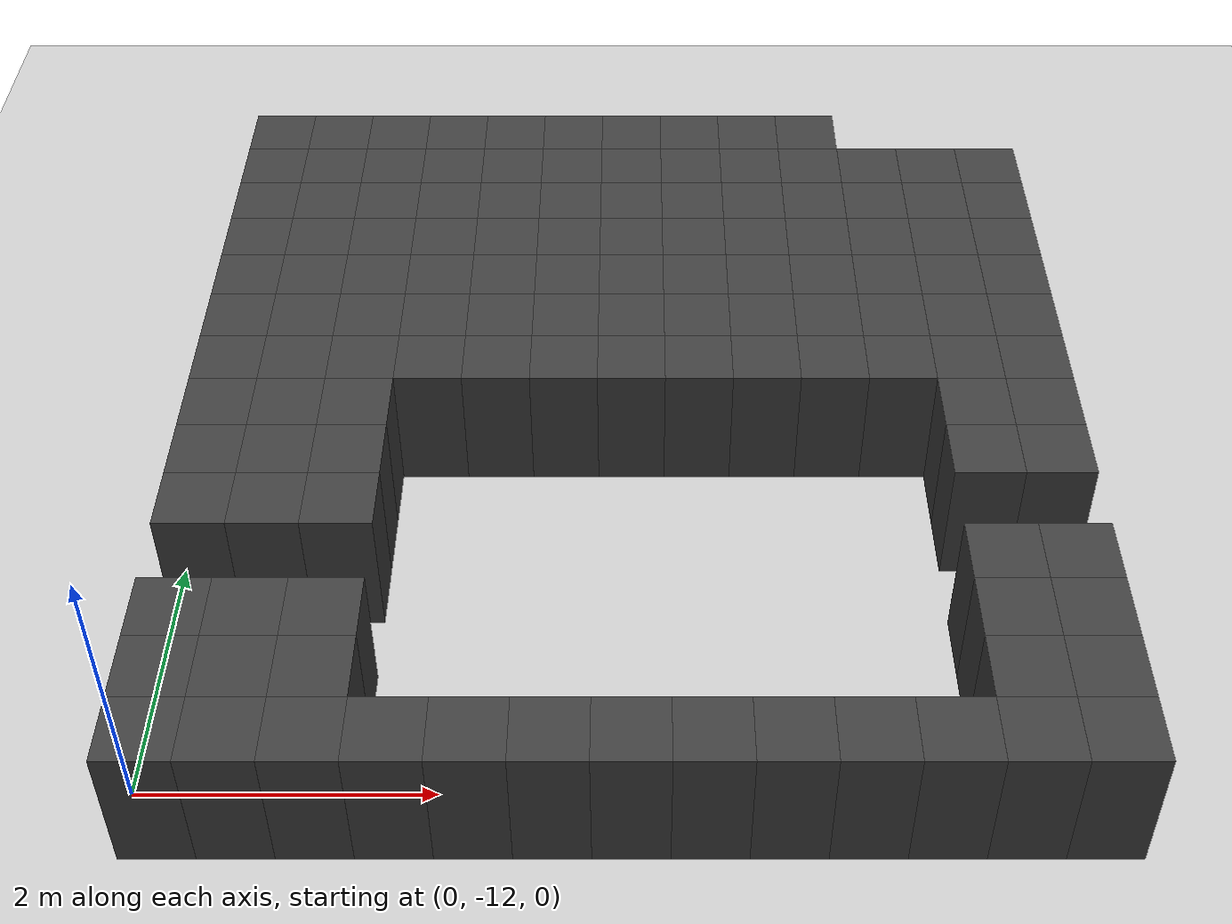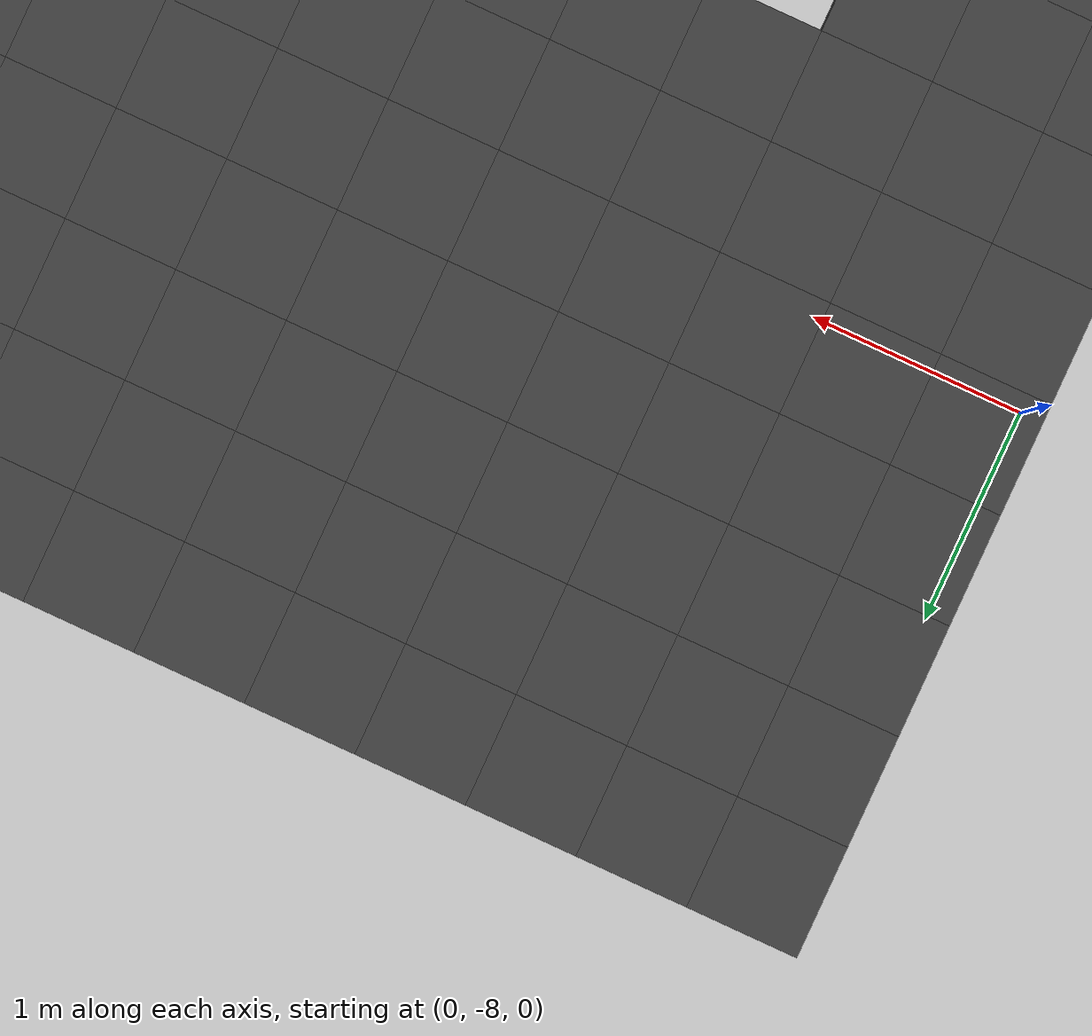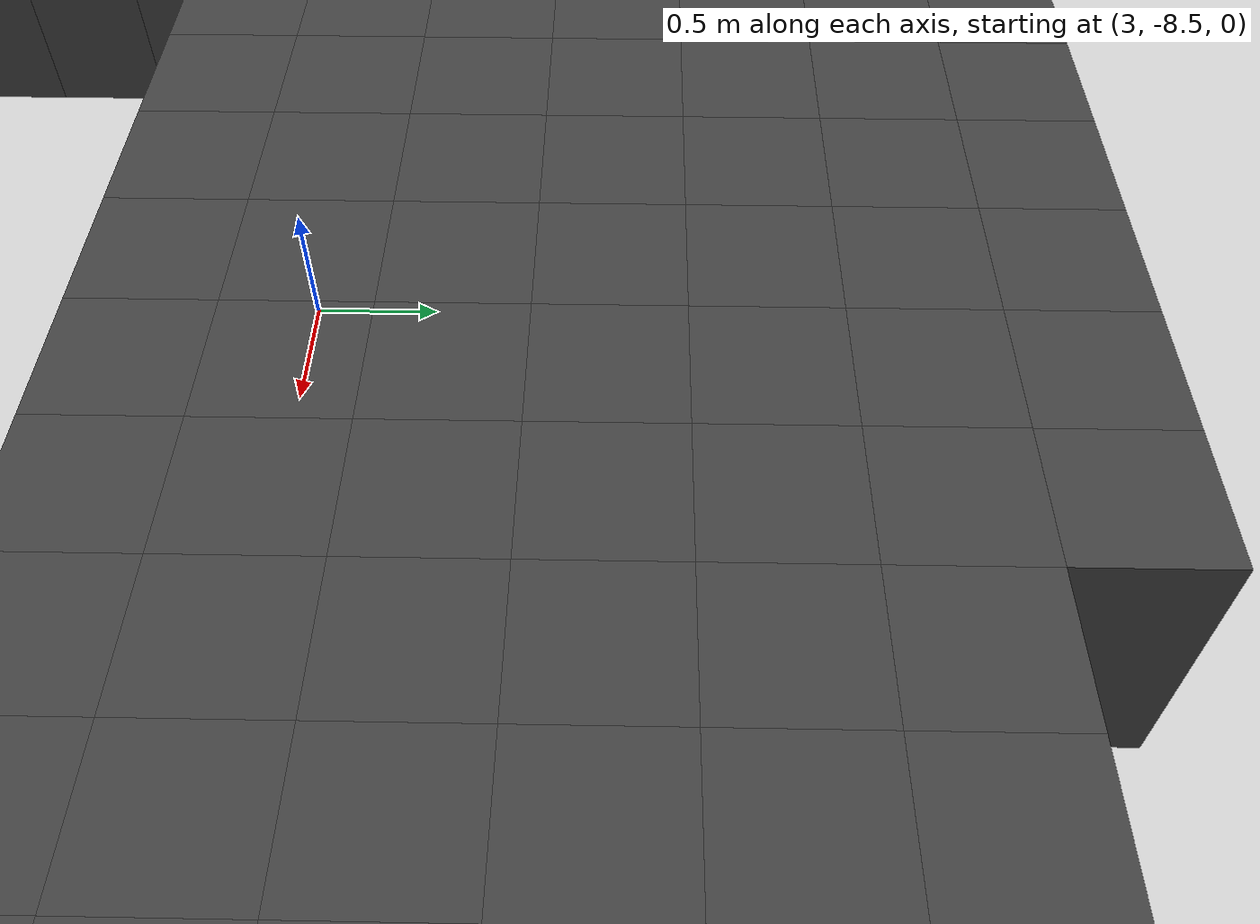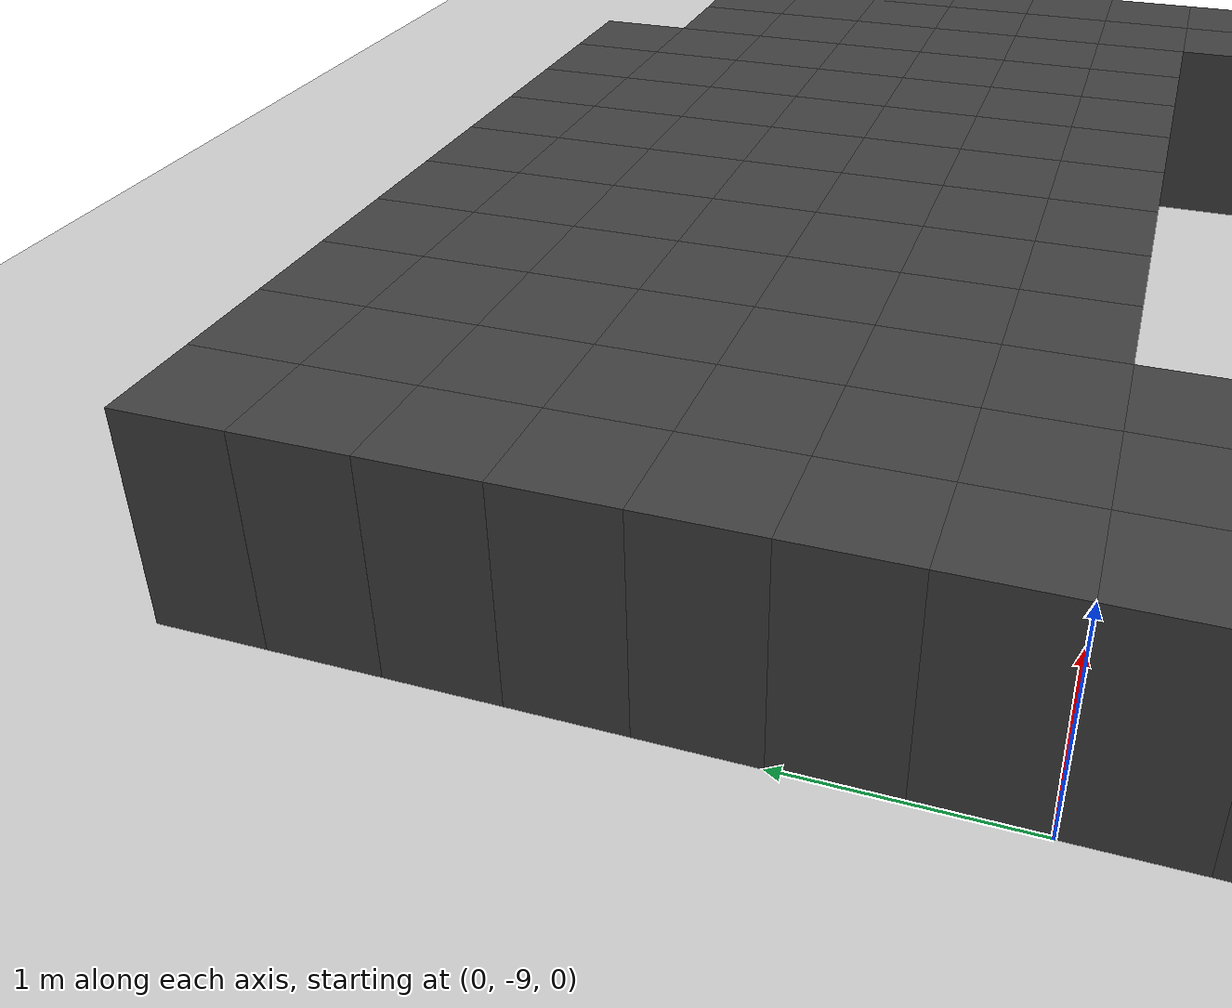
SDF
<sdf version="1.7">
 <world name="map_11779">
  <model name="ground_plane">
   <static>true</static>
   <link name="link">
    <collision name="collision">
     <geometry><plane><normal>0 0 1</normal><size>200 200</size></plane></geometry>
    </collision>
    <visual name="visual">
     <geometry><plane><normal>0 0 1</normal><size>200 200</size></plane></geometry>
     <material><ambient>0.8 0.8 0.8 1</ambient><diffuse>0.8 0.8 0.8 1</diffuse></material>
    </visual>
   </link>
  </model>
  <model name="maze_environment">
   <static>true</static>
   <link name="wall_1510">
    <pose>0.250 -5.750 0.500 0 0 0</pose>
    <collision name="col"><geometry><box><size>0.5 0.5 1.0</size></box></geometry></collision>
    <visual name="vis">
     <geometry><box><size>0.5 0.5 1.0</size></box></geometry>
     <material><ambient>0.15 0.15 0.15 1</ambient><diffuse>0.25 0.25 0.25 1</diffuse></material>
    </visual>
   </link>
   <link name="wall_1511">
    <pose>0.750 -5.750 0.500 0 0 0</pose>
    <collision name="col"><geometry><box><size>0.5 0.5 1.0</size></box></geometry></collision>
    <visual name="vis">
     <geometry><box><size>0.5 0.5 1.0</size></box></geometry>
     <material><ambient>0.15 0.15 0.15 1</ambient><diffuse>0.25 0.25 0.25 1</diffuse></material>
    </visual>
   </link>
   <link name="wall_1512">
    <pose>1.250 -5.750 0.500 0 0 0</pose>
    <collision name="col"><geometry><box><size>0.5 0.5 1.0</size></box></geometry></collision>
    <visual name="vis">
     <geometry><box><size>0.5 0.5 1.0</size></box></geometry>
     <material><ambient>0.15 0.15 0.15 1</ambient><diffuse>0.25 0.25 0.25 1</diffuse></material>
    </visual>
   </link>
   <link name="wall_1513">
    <pose>1.750 -5.750 0.500 0 0 0</pose>
    <collision name="col"><geometry><box><size>0.5 0.5 1.0</size></box></geometry></collision>
    <visual name="vis">
     <geometry><box><size>0.5 0.5 1.0</size></box></geometry>
     <material><ambient>0.15 0.15 0.15 1</ambient><diffuse>0.25 0.25 0.25 1</diffuse></material>
    </visual>
   </link>
   <link name="wall_1514">
    <pose>2.250 -5.750 0.500 0 0 0</pose>
    <collision name="col"><geometry><box><size>0.5 0.5 1.0</size></box></geometry></collision>
    <visual name="vis">
     <geometry><box><size>0.5 0.5 1.0</size></box></geometry>
     <material><ambient>0.15 0.15 0.15 1</ambient><diffuse>0.25 0.25 0.25 1</diffuse></material>
    </visual>
   </link>
   <link name="wall_1515">
    <pose>2.750 -5.750 0.500 0 0 0</pose>
    <collision name="col"><geometry><box><size>0.5 0.5 1.0</size></box></geometry></collision>
    <visual name="vis">
     <geometry><box><size>0.5 0.5 1.0</size></box></geometry>
     <material><ambient>0.15 0.15 0.15 1</ambient><diffuse>0.25 0.25 0.25 1</diffuse></material>
    </visual>
   </link>
   <link name="wall_1516">
    <pose>3.250 -5.750 0.500 0 0 0</pose>
    <collision name="col"><geometry><box><size>0.5 0.5 1.0</size></box></geometry></collision>
    <visual name="vis">
     <geometry><box><size>0.5 0.5 1.0</size></box></geometry>
     <material><ambient>0.15 0.15 0.15 1</ambient><diffuse>0.25 0.25 0.25 1</diffuse></material>
    </visual>
   </link>
   <link name="wall_1517">
    <pose>3.750 -5.750 0.500 0 0 0</pose>
    <collision name="col"><geometry><box><size>0.5 0.5 1.0</size></box></geometry></collision>
    <visual name="vis">
     <geometry><box><size>0.5 0.5 1.0</size></box></geometry>
     <material><ambient>0.15 0.15 0.15 1</ambient><diffuse>0.25 0.25 0.25 1</diffuse></material>
    </visual>
   </link>
   <link name="wall_1518">
    <pose>4.250 -5.750 0.500 0 0 0</pose>
    <collision name="col"><geometry><box><size>0.5 0.5 1.0</size></box></geometry></collision>
    <visual name="vis">
     <geometry><box><size>0.5 0.5 1.0</size></box></geometry>
     <material><ambient>0.15 0.15 0.15 1</ambient><diffuse>0.25 0.25 0.25 1</diffuse></material>
    </visual>
   </link>
   <link name="wall_1519">
    <pose>4.750 -5.750 0.500 0 0 0</pose>
    <collision name="col"><geometry><box><size>0.5 0.5 1.0</size></box></geometry></collision>
    <visual name="vis">
     <geometry><box><size>0.5 0.5 1.0</size></box></geometry>
     <material><ambient>0.15 0.15 0.15 1</ambient><diffuse>0.25 0.25 0.25 1</diffuse></material>
    </visual>
   </link>
   <link name="wall_1559">
    <pose>0.250 -6.250 0.500 0 0 0</pose>
    <collision name="col"><geometry><box><size>0.5 0.5 1.0</size></box></geometry></collision>
    <visual name="vis">
     <geometry><box><size>0.5 0.5 1.0</size></box></geometry>
     <material><ambient>0.15 0.15 0.15 1</ambient><diffuse>0.25 0.25 0.25 1</diffuse></material>
    </visual>
   </link>
   <link name="wall_1560">
    <pose>0.750 -6.250 0.500 0 0 0</pose>
    <collision name="col"><geometry><box><size>0.5 0.5 1.0</size></box></geometry></collision>
    <visual name="vis">
     <geometry><box><size>0.5 0.5 1.0</size></box></geometry>
     <material><ambient>0.15 0.15 0.15 1</ambient><diffuse>0.25 0.25 0.25 1</diffuse></material>
    </visual>
   </link>
   <link name="wall_1561">
    <pose>1.250 -6.250 0.500 0 0 0</pose>
    <collision name="col"><geometry><box><size>0.5 0.5 1.0</size></box></geometry></collision>
    <visual name="vis">
     <geometry><box><size>0.5 0.5 1.0</size></box></geometry>
     <material><ambient>0.15 0.15 0.15 1</ambient><diffuse>0.25 0.25 0.25 1</diffuse></material>
    </visual>
   </link>
   <link name="wall_1562">
    <pose>1.750 -6.250 0.500 0 0 0</pose>
    <collision name="col"><geometry><box><size>0.5 0.5 1.0</size></box></geometry></collision>
    <visual name="vis">
     <geometry><box><size>0.5 0.5 1.0</size></box></geometry>
     <material><ambient>0.15 0.15 0.15 1</ambient><diffuse>0.25 0.25 0.25 1</diffuse></material>
    </visual>
   </link>
   <link name="wall_1563">
    <pose>2.250 -6.250 0.500 0 0 0</pose>
    <collision name="col"><geometry><box><size>0.5 0.5 1.0</size></box></geometry></collision>
    <visual name="vis">
     <geometry><box><size>0.5 0.5 1.0</size></box></geometry>
     <material><ambient>0.15 0.15 0.15 1</ambient><diffuse>0.25 0.25 0.25 1</diffuse></material>
    </visual>
   </link>
   <link name="wall_1564">
    <pose>2.750 -6.250 0.500 0 0 0</pose>
    <collision name="col"><geometry><box><size>0.5 0.5 1.0</size></box></geometry></collision>
    <visual name="vis">
     <geometry><box><size>0.5 0.5 1.0</size></box></geometry>
     <material><ambient>0.15 0.15 0.15 1</ambient><diffuse>0.25 0.25 0.25 1</diffuse></material>
    </visual>
   </link>
   <link name="wall_1565">
    <pose>3.250 -6.250 0.500 0 0 0</pose>
    <collision name="col"><geometry><box><size>0.5 0.5 1.0</size></box></geometry></collision>
    <visual name="vis">
     <geometry><box><size>0.5 0.5 1.0</size></box></geometry>
     <material><ambient>0.15 0.15 0.15 1</ambient><diffuse>0.25 0.25 0.25 1</diffuse></material>
    </visual>
   </link>
   <link name="wall_1566">
    <pose>3.750 -6.250 0.500 0 0 0</pose>
    <collision name="col"><geometry><box><size>0.5 0.5 1.0</size></box></geometry></collision>
    <visual name="vis">
     <geometry><box><size>0.5 0.5 1.0</size></box></geometry>
     <material><ambient>0.15 0.15 0.15 1</ambient><diffuse>0.25 0.25 0.25 1</diffuse></material>
    </visual>
   </link>
   <link name="wall_1567">
    <pose>4.250 -6.250 0.500 0 0 0</pose>
    <collision name="col"><geometry><box><size>0.5 0.5 1.0</size></box></geometry></collision>
    <visual name="vis">
     <geometry><box><size>0.5 0.5 1.0</size></box></geometry>
     <material><ambient>0.15 0.15 0.15 1</ambient><diffuse>0.25 0.25 0.25 1</diffuse></material>
    </visual>
   </link>
   <link name="wall_1568">
    <pose>4.750 -6.250 0.500 0 0 0</pose>
    <collision name="col"><geometry><box><size>0.5 0.5 1.0</size></box></geometry></collision>
    <visual name="vis">
     <geometry><box><size>0.5 0.5 1.0</size></box></geometry>
     <material><ambient>0.15 0.15 0.15 1</ambient><diffuse>0.25 0.25 0.25 1</diffuse></material>
    </visual>
   </link>
   <link name="wall_1569">
    <pose>5.250 -6.250 0.500 0 0 0</pose>
    <collision name="col"><geometry><box><size>0.5 0.5 1.0</size></box></geometry></collision>
    <visual name="vis">
     <geometry><box><size>0.5 0.5 1.0</size></box></geometry>
     <material><ambient>0.15 0.15 0.15 1</ambient><diffuse>0.25 0.25 0.25 1</diffuse></material>
    </visual>
   </link>
   <link name="wall_1570">
    <pose>5.750 -6.250 0.500 0 0 0</pose>
    <collision name="col"><geometry><box><size>0.5 0.5 1.0</size></box></geometry></collision>
    <visual name="vis">
     <geometry><box><size>0.5 0.5 1.0</size></box></geometry>
     <material><ambient>0.15 0.15 0.15 1</ambient><diffuse>0.25 0.25 0.25 1</diffuse></material>
    </visual>
   </link>
   <link name="wall_1571">
    <pose>6.250 -6.250 0.500 0 0 0</pose>
    <collision name="col"><geometry><box><size>0.5 0.5 1.0</size></box></geometry></collision>
    <visual name="vis">
     <geometry><box><size>0.5 0.5 1.0</size></box></geometry>
     <material><ambient>0.15 0.15 0.15 1</ambient><diffuse>0.25 0.25 0.25 1</diffuse></material>
    </visual>
   </link>
   <link name="wall_1603">
    <pose>0.250 -6.750 0.500 0 0 0</pose>
    <collision name="col"><geometry><box><size>0.5 0.5 1.0</size></box></geometry></collision>
    <visual name="vis">
     <geometry><box><size>0.5 0.5 1.0</size></box></geometry>
     <material><ambient>0.15 0.15 0.15 1</ambient><diffuse>0.25 0.25 0.25 1</diffuse></material>
    </visual>
   </link>
   <link name="wall_1604">
    <pose>0.750 -6.750 0.500 0 0 0</pose>
    <collision name="col"><geometry><box><size>0.5 0.5 1.0</size></box></geometry></collision>
    <visual name="vis">
     <geometry><box><size>0.5 0.5 1.0</size></box></geometry>
     <material><ambient>0.15 0.15 0.15 1</ambient><diffuse>0.25 0.25 0.25 1</diffuse></material>
    </visual>
   </link>
   <link name="wall_1605">
    <pose>1.250 -6.750 0.500 0 0 0</pose>
    <collision name="col"><geometry><box><size>0.5 0.5 1.0</size></box></geometry></collision>
    <visual name="vis">
     <geometry><box><size>0.5 0.5 1.0</size></box></geometry>
     <material><ambient>0.15 0.15 0.15 1</ambient><diffuse>0.25 0.25 0.25 1</diffuse></material>
    </visual>
   </link>
   <link name="wall_1606">
    <pose>1.750 -6.750 0.500 0 0 0</pose>
    <collision name="col"><geometry><box><size>0.5 0.5 1.0</size></box></geometry></collision>
    <visual name="vis">
     <geometry><box><size>0.5 0.5 1.0</size></box></geometry>
     <material><ambient>0.15 0.15 0.15 1</ambient><diffuse>0.25 0.25 0.25 1</diffuse></material>
    </visual>
   </link>
   <link name="wall_1607">
    <pose>2.250 -6.750 0.500 0 0 0</pose>
    <collision name="col"><geometry><box><size>0.5 0.5 1.0</size></box></geometry></collision>
    <visual name="vis">
     <geometry><box><size>0.5 0.5 1.0</size></box></geometry>
     <material><ambient>0.15 0.15 0.15 1</ambient><diffuse>0.25 0.25 0.25 1</diffuse></material>
    </visual>
   </link>
   <link name="wall_1608">
    <pose>2.750 -6.750 0.500 0 0 0</pose>
    <collision name="col"><geometry><box><size>0.5 0.5 1.0</size></box></geometry></collision>
    <visual name="vis">
     <geometry><box><size>0.5 0.5 1.0</size></box></geometry>
     <material><ambient>0.15 0.15 0.15 1</ambient><diffuse>0.25 0.25 0.25 1</diffuse></material>
    </visual>
   </link>
   <link name="wall_1609">
    <pose>3.250 -6.750 0.500 0 0 0</pose>
    <collision name="col"><geometry><box><size>0.5 0.5 1.0</size></box></geometry></collision>
    <visual name="vis">
     <geometry><box><size>0.5 0.5 1.0</size></box></geometry>
     <material><ambient>0.15 0.15 0.15 1</ambient><diffuse>0.25 0.25 0.25 1</diffuse></material>
    </visual>
   </link>
   <link name="wall_1610">
    <pose>3.750 -6.750 0.500 0 0 0</pose>
    <collision name="col"><geometry><box><size>0.5 0.5 1.0</size></box></geometry></collision>
    <visual name="vis">
     <geometry><box><size>0.5 0.5 1.0</size></box></geometry>
     <material><ambient>0.15 0.15 0.15 1</ambient><diffuse>0.25 0.25 0.25 1</diffuse></material>
    </visual>
   </link>
   <link name="wall_1611">
    <pose>4.250 -6.750 0.500 0 0 0</pose>
    <collision name="col"><geometry><box><size>0.5 0.5 1.0</size></box></geometry></collision>
    <visual name="vis">
     <geometry><box><size>0.5 0.5 1.0</size></box></geometry>
     <material><ambient>0.15 0.15 0.15 1</ambient><diffuse>0.25 0.25 0.25 1</diffuse></material>
    </visual>
   </link>
   <link name="wall_1612">
    <pose>4.750 -6.750 0.500 0 0 0</pose>
    <collision name="col"><geometry><box><size>0.5 0.5 1.0</size></box></geometry></collision>
    <visual name="vis">
     <geometry><box><size>0.5 0.5 1.0</size></box></geometry>
     <material><ambient>0.15 0.15 0.15 1</ambient><diffuse>0.25 0.25 0.25 1</diffuse></material>
    </visual>
   </link>
   <link name="wall_1613">
    <pose>5.250 -6.750 0.500 0 0 0</pose>
    <collision name="col"><geometry><box><size>0.5 0.5 1.0</size></box></geometry></collision>
    <visual name="vis">
     <geometry><box><size>0.5 0.5 1.0</size></box></geometry>
     <material><ambient>0.15 0.15 0.15 1</ambient><diffuse>0.25 0.25 0.25 1</diffuse></material>
    </visual>
   </link>
   <link name="wall_1614">
    <pose>5.750 -6.750 0.500 0 0 0</pose>
    <collision name="col"><geometry><box><size>0.5 0.5 1.0</size></box></geometry></collision>
    <visual name="vis">
     <geometry><box><size>0.5 0.5 1.0</size></box></geometry>
     <material><ambient>0.15 0.15 0.15 1</ambient><diffuse>0.25 0.25 0.25 1</diffuse></material>
    </visual>
   </link>
   <link name="wall_1615">
    <pose>6.250 -6.750 0.500 0 0 0</pose>
    <collision name="col"><geometry><box><size>0.5 0.5 1.0</size></box></geometry></collision>
    <visual name="vis">
     <geometry><box><size>0.5 0.5 1.0</size></box></geometry>
     <material><ambient>0.15 0.15 0.15 1</ambient><diffuse>0.25 0.25 0.25 1</diffuse></material>
    </visual>
   </link>
   <link name="wall_1647">
    <pose>0.250 -7.250 0.500 0 0 0</pose>
    <collision name="col"><geometry><box><size>0.5 0.5 1.0</size></box></geometry></collision>
    <visual name="vis">
     <geometry><box><size>0.5 0.5 1.0</size></box></geometry>
     <material><ambient>0.15 0.15 0.15 1</ambient><diffuse>0.25 0.25 0.25 1</diffuse></material>
    </visual>
   </link>
   <link name="wall_1648">
    <pose>0.750 -7.250 0.500 0 0 0</pose>
    <collision name="col"><geometry><box><size>0.5 0.5 1.0</size></box></geometry></collision>
    <visual name="vis">
     <geometry><box><size>0.5 0.5 1.0</size></box></geometry>
     <material><ambient>0.15 0.15 0.15 1</ambient><diffuse>0.25 0.25 0.25 1</diffuse></material>
    </visual>
   </link>
   <link name="wall_1649">
    <pose>1.250 -7.250 0.500 0 0 0</pose>
    <collision name="col"><geometry><box><size>0.5 0.5 1.0</size></box></geometry></collision>
    <visual name="vis">
     <geometry><box><size>0.5 0.5 1.0</size></box></geometry>
     <material><ambient>0.15 0.15 0.15 1</ambient><diffuse>0.25 0.25 0.25 1</diffuse></material>
    </visual>
   </link>
   <link name="wall_1650">
    <pose>1.750 -7.250 0.500 0 0 0</pose>
    <collision name="col"><geometry><box><size>0.5 0.5 1.0</size></box></geometry></collision>
    <visual name="vis">
     <geometry><box><size>0.5 0.5 1.0</size></box></geometry>
     <material><ambient>0.15 0.15 0.15 1</ambient><diffuse>0.25 0.25 0.25 1</diffuse></material>
    </visual>
   </link>
   <link name="wall_1651">
    <pose>2.250 -7.250 0.500 0 0 0</pose>
    <collision name="col"><geometry><box><size>0.5 0.5 1.0</size></box></geometry></collision>
    <visual name="vis">
     <geometry><box><size>0.5 0.5 1.0</size></box></geometry>
     <material><ambient>0.15 0.15 0.15 1</ambient><diffuse>0.25 0.25 0.25 1</diffuse></material>
    </visual>
   </link>
   <link name="wall_1652">
    <pose>2.750 -7.250 0.500 0 0 0</pose>
    <collision name="col"><geometry><box><size>0.5 0.5 1.0</size></box></geometry></collision>
    <visual name="vis">
     <geometry><box><size>0.5 0.5 1.0</size></box></geometry>
     <material><ambient>0.15 0.15 0.15 1</ambient><diffuse>0.25 0.25 0.25 1</diffuse></material>
    </visual>
   </link>
   <link name="wall_1653">
    <pose>3.250 -7.250 0.500 0 0 0</pose>
    <collision name="col"><geometry><box><size>0.5 0.5 1.0</size></box></geometry></collision>
    <visual name="vis">
     <geometry><box><size>0.5 0.5 1.0</size></box></geometry>
     <material><ambient>0.15 0.15 0.15 1</ambient><diffuse>0.25 0.25 0.25 1</diffuse></material>
    </visual>
   </link>
   <link name="wall_1654">
    <pose>3.750 -7.250 0.500 0 0 0</pose>
    <collision name="col"><geometry><box><size>0.5 0.5 1.0</size></box></geometry></collision>
    <visual name="vis">
     <geometry><box><size>0.5 0.5 1.0</size></box></geometry>
     <material><ambient>0.15 0.15 0.15 1</ambient><diffuse>0.25 0.25 0.25 1</diffuse></material>
    </visual>
   </link>
   <link name="wall_1655">
    <pose>4.250 -7.250 0.500 0 0 0</pose>
    <collision name="col"><geometry><box><size>0.5 0.5 1.0</size></box></geometry></collision>
    <visual name="vis">
     <geometry><box><size>0.5 0.5 1.0</size></box></geometry>
     <material><ambient>0.15 0.15 0.15 1</ambient><diffuse>0.25 0.25 0.25 1</diffuse></material>
    </visual>
   </link>
   <link name="wall_1656">
    <pose>4.750 -7.250 0.500 0 0 0</pose>
    <collision name="col"><geometry><box><size>0.5 0.5 1.0</size></box></geometry></collision>
    <visual name="vis">
     <geometry><box><size>0.5 0.5 1.0</size></box></geometry>
     <material><ambient>0.15 0.15 0.15 1</ambient><diffuse>0.25 0.25 0.25 1</diffuse></material>
    </visual>
   </link>
   <link name="wall_1657">
    <pose>5.250 -7.250 0.500 0 0 0</pose>
    <collision name="col"><geometry><box><size>0.5 0.5 1.0</size></box></geometry></collision>
    <visual name="vis">
     <geometry><box><size>0.5 0.5 1.0</size></box></geometry>
     <material><ambient>0.15 0.15 0.15 1</ambient><diffuse>0.25 0.25 0.25 1</diffuse></material>
    </visual>
   </link>
   <link name="wall_1658">
    <pose>5.750 -7.250 0.500 0 0 0</pose>
    <collision name="col"><geometry><box><size>0.5 0.5 1.0</size></box></geometry></collision>
    <visual name="vis">
     <geometry><box><size>0.5 0.5 1.0</size></box></geometry>
     <material><ambient>0.15 0.15 0.15 1</ambient><diffuse>0.25 0.25 0.25 1</diffuse></material>
    </visual>
   </link>
   <link name="wall_1659">
    <pose>6.250 -7.250 0.500 0 0 0</pose>
    <collision name="col"><geometry><box><size>0.5 0.5 1.0</size></box></geometry></collision>
    <visual name="vis">
     <geometry><box><size>0.5 0.5 1.0</size></box></geometry>
     <material><ambient>0.15 0.15 0.15 1</ambient><diffuse>0.25 0.25 0.25 1</diffuse></material>
    </visual>
   </link>
   <link name="wall_1689">
    <pose>0.250 -7.750 0.500 0 0 0</pose>
    <collision name="col"><geometry><box><size>0.5 0.5 1.0</size></box></geometry></collision>
    <visual name="vis">
     <geometry><box><size>0.5 0.5 1.0</size></box></geometry>
     <material><ambient>0.15 0.15 0.15 1</ambient><diffuse>0.25 0.25 0.25 1</diffuse></material>
    </visual>
   </link>
   <link name="wall_1690">
    <pose>0.750 -7.750 0.500 0 0 0</pose>
    <collision name="col"><geometry><box><size>0.5 0.5 1.0</size></box></geometry></collision>
    <visual name="vis">
     <geometry><box><size>0.5 0.5 1.0</size></box></geometry>
     <material><ambient>0.15 0.15 0.15 1</ambient><diffuse>0.25 0.25 0.25 1</diffuse></material>
    </visual>
   </link>
   <link name="wall_1691">
    <pose>1.250 -7.750 0.500 0 0 0</pose>
    <collision name="col"><geometry><box><size>0.5 0.5 1.0</size></box></geometry></collision>
    <visual name="vis">
     <geometry><box><size>0.5 0.5 1.0</size></box></geometry>
     <material><ambient>0.15 0.15 0.15 1</ambient><diffuse>0.25 0.25 0.25 1</diffuse></material>
    </visual>
   </link>
   <link name="wall_1692">
    <pose>1.750 -7.750 0.500 0 0 0</pose>
    <collision name="col"><geometry><box><size>0.5 0.5 1.0</size></box></geometry></collision>
    <visual name="vis">
     <geometry><box><size>0.5 0.5 1.0</size></box></geometry>
     <material><ambient>0.15 0.15 0.15 1</ambient><diffuse>0.25 0.25 0.25 1</diffuse></material>
    </visual>
   </link>
   <link name="wall_1693">
    <pose>2.250 -7.750 0.500 0 0 0</pose>
    <collision name="col"><geometry><box><size>0.5 0.5 1.0</size></box></geometry></collision>
    <visual name="vis">
     <geometry><box><size>0.5 0.5 1.0</size></box></geometry>
     <material><ambient>0.15 0.15 0.15 1</ambient><diffuse>0.25 0.25 0.25 1</diffuse></material>
    </visual>
   </link>
   <link name="wall_1694">
    <pose>2.750 -7.750 0.500 0 0 0</pose>
    <collision name="col"><geometry><box><size>0.5 0.5 1.0</size></box></geometry></collision>
    <visual name="vis">
     <geometry><box><size>0.5 0.5 1.0</size></box></geometry>
     <material><ambient>0.15 0.15 0.15 1</ambient><diffuse>0.25 0.25 0.25 1</diffuse></material>
    </visual>
   </link>
   <link name="wall_1695">
    <pose>3.250 -7.750 0.500 0 0 0</pose>
    <collision name="col"><geometry><box><size>0.5 0.5 1.0</size></box></geometry></collision>
    <visual name="vis">
     <geometry><box><size>0.5 0.5 1.0</size></box></geometry>
     <material><ambient>0.15 0.15 0.15 1</ambient><diffuse>0.25 0.25 0.25 1</diffuse></material>
    </visual>
   </link>
   <link name="wall_1696">
    <pose>3.750 -7.750 0.500 0 0 0</pose>
    <collision name="col"><geometry><box><size>0.5 0.5 1.0</size></box></geometry></collision>
    <visual name="vis">
     <geometry><box><size>0.5 0.5 1.0</size></box></geometry>
     <material><ambient>0.15 0.15 0.15 1</ambient><diffuse>0.25 0.25 0.25 1</diffuse></material>
    </visual>
   </link>
   <link name="wall_1697">
    <pose>4.250 -7.750 0.500 0 0 0</pose>
    <collision name="col"><geometry><box><size>0.5 0.5 1.0</size></box></geometry></collision>
    <visual name="vis">
     <geometry><box><size>0.5 0.5 1.0</size></box></geometry>
     <material><ambient>0.15 0.15 0.15 1</ambient><diffuse>0.25 0.25 0.25 1</diffuse></material>
    </visual>
   </link>
   <link name="wall_1698">
    <pose>4.750 -7.750 0.500 0 0 0</pose>
    <collision name="col"><geometry><box><size>0.5 0.5 1.0</size></box></geometry></collision>
    <visual name="vis">
     <geometry><box><size>0.5 0.5 1.0</size></box></geometry>
     <material><ambient>0.15 0.15 0.15 1</ambient><diffuse>0.25 0.25 0.25 1</diffuse></material>
    </visual>
   </link>
   <link name="wall_1699">
    <pose>5.250 -7.750 0.500 0 0 0</pose>
    <collision name="col"><geometry><box><size>0.5 0.5 1.0</size></box></geometry></collision>
    <visual name="vis">
     <geometry><box><size>0.5 0.5 1.0</size></box></geometry>
     <material><ambient>0.15 0.15 0.15 1</ambient><diffuse>0.25 0.25 0.25 1</diffuse></material>
    </visual>
   </link>
   <link name="wall_1700">
    <pose>5.750 -7.750 0.500 0 0 0</pose>
    <collision name="col"><geometry><box><size>0.5 0.5 1.0</size></box></geometry></collision>
    <visual name="vis">
     <geometry><box><size>0.5 0.5 1.0</size></box></geometry>
     <material><ambient>0.15 0.15 0.15 1</ambient><diffuse>0.25 0.25 0.25 1</diffuse></material>
    </visual>
   </link>
   <link name="wall_1701">
    <pose>6.250 -7.750 0.500 0 0 0</pose>
    <collision name="col"><geometry><box><size>0.5 0.5 1.0</size></box></geometry></collision>
    <visual name="vis">
     <geometry><box><size>0.5 0.5 1.0</size></box></geometry>
     <material><ambient>0.15 0.15 0.15 1</ambient><diffuse>0.25 0.25 0.25 1</diffuse></material>
    </visual>
   </link>
   <link name="wall_1731">
    <pose>0.250 -8.250 0.500 0 0 0</pose>
    <collision name="col"><geometry><box><size>0.5 0.5 1.0</size></box></geometry></collision>
    <visual name="vis">
     <geometry><box><size>0.5 0.5 1.0</size></box></geometry>
     <material><ambient>0.15 0.15 0.15 1</ambient><diffuse>0.25 0.25 0.25 1</diffuse></material>
    </visual>
   </link>
   <link name="wall_1732">
    <pose>0.750 -8.250 0.500 0 0 0</pose>
    <collision name="col"><geometry><box><size>0.5 0.5 1.0</size></box></geometry></collision>
    <visual name="vis">
     <geometry><box><size>0.5 0.5 1.0</size></box></geometry>
     <material><ambient>0.15 0.15 0.15 1</ambient><diffuse>0.25 0.25 0.25 1</diffuse></material>
    </visual>
   </link>
   <link name="wall_1733">
    <pose>1.250 -8.250 0.500 0 0 0</pose>
    <collision name="col"><geometry><box><size>0.5 0.5 1.0</size></box></geometry></collision>
    <visual name="vis">
     <geometry><box><size>0.5 0.5 1.0</size></box></geometry>
     <material><ambient>0.15 0.15 0.15 1</ambient><diffuse>0.25 0.25 0.25 1</diffuse></material>
    </visual>
   </link>
   <link name="wall_1734">
    <pose>1.750 -8.250 0.500 0 0 0</pose>
    <collision name="col"><geometry><box><size>0.5 0.5 1.0</size></box></geometry></collision>
    <visual name="vis">
     <geometry><box><size>0.5 0.5 1.0</size></box></geometry>
     <material><ambient>0.15 0.15 0.15 1</ambient><diffuse>0.25 0.25 0.25 1</diffuse></material>
    </visual>
   </link>
   <link name="wall_1735">
    <pose>2.250 -8.250 0.500 0 0 0</pose>
    <collision name="col"><geometry><box><size>0.5 0.5 1.0</size></box></geometry></collision>
    <visual name="vis">
     <geometry><box><size>0.5 0.5 1.0</size></box></geometry>
     <material><ambient>0.15 0.15 0.15 1</ambient><diffuse>0.25 0.25 0.25 1</diffuse></material>
    </visual>
   </link>
   <link name="wall_1736">
    <pose>2.750 -8.250 0.500 0 0 0</pose>
    <collision name="col"><geometry><box><size>0.5 0.5 1.0</size></box></geometry></collision>
    <visual name="vis">
     <geometry><box><size>0.5 0.5 1.0</size></box></geometry>
     <material><ambient>0.15 0.15 0.15 1</ambient><diffuse>0.25 0.25 0.25 1</diffuse></material>
    </visual>
   </link>
   <link name="wall_1737">
    <pose>3.250 -8.250 0.500 0 0 0</pose>
    <collision name="col"><geometry><box><size>0.5 0.5 1.0</size></box></geometry></collision>
    <visual name="vis">
     <geometry><box><size>0.5 0.5 1.0</size></box></geometry>
     <material><ambient>0.15 0.15 0.15 1</ambient><diffuse>0.25 0.25 0.25 1</diffuse></material>
    </visual>
   </link>
   <link name="wall_1738">
    <pose>3.750 -8.250 0.500 0 0 0</pose>
    <collision name="col"><geometry><box><size>0.5 0.5 1.0</size></box></geometry></collision>
    <visual name="vis">
     <geometry><box><size>0.5 0.5 1.0</size></box></geometry>
     <material><ambient>0.15 0.15 0.15 1</ambient><diffuse>0.25 0.25 0.25 1</diffuse></material>
    </visual>
   </link>
   <link name="wall_1739">
    <pose>4.250 -8.250 0.500 0 0 0</pose>
    <collision name="col"><geometry><box><size>0.5 0.5 1.0</size></box></geometry></collision>
    <visual name="vis">
     <geometry><box><size>0.5 0.5 1.0</size></box></geometry>
     <material><ambient>0.15 0.15 0.15 1</ambient><diffuse>0.25 0.25 0.25 1</diffuse></material>
    </visual>
   </link>
   <link name="wall_1740">
    <pose>4.750 -8.250 0.500 0 0 0</pose>
    <collision name="col"><geometry><box><size>0.5 0.5 1.0</size></box></geometry></collision>
    <visual name="vis">
     <geometry><box><size>0.5 0.5 1.0</size></box></geometry>
     <material><ambient>0.15 0.15 0.15 1</ambient><diffuse>0.25 0.25 0.25 1</diffuse></material>
    </visual>
   </link>
   <link name="wall_1741">
    <pose>5.250 -8.250 0.500 0 0 0</pose>
    <collision name="col"><geometry><box><size>0.5 0.5 1.0</size></box></geometry></collision>
    <visual name="vis">
     <geometry><box><size>0.5 0.5 1.0</size></box></geometry>
     <material><ambient>0.15 0.15 0.15 1</ambient><diffuse>0.25 0.25 0.25 1</diffuse></material>
    </visual>
   </link>
   <link name="wall_1742">
    <pose>5.750 -8.250 0.500 0 0 0</pose>
    <collision name="col"><geometry><box><size>0.5 0.5 1.0</size></box></geometry></collision>
    <visual name="vis">
     <geometry><box><size>0.5 0.5 1.0</size></box></geometry>
     <material><ambient>0.15 0.15 0.15 1</ambient><diffuse>0.25 0.25 0.25 1</diffuse></material>
    </visual>
   </link>
   <link name="wall_1743">
    <pose>6.250 -8.250 0.500 0 0 0</pose>
    <collision name="col"><geometry><box><size>0.5 0.5 1.0</size></box></geometry></collision>
    <visual name="vis">
     <geometry><box><size>0.5 0.5 1.0</size></box></geometry>
     <material><ambient>0.15 0.15 0.15 1</ambient><diffuse>0.25 0.25 0.25 1</diffuse></material>
    </visual>
   </link>
   <link name="wall_1766">
    <pose>0.250 -8.750 0.500 0 0 0</pose>
    <collision name="col"><geometry><box><size>0.5 0.5 1.0</size></box></geometry></collision>
    <visual name="vis">
     <geometry><box><size>0.5 0.5 1.0</size></box></geometry>
     <material><ambient>0.15 0.15 0.15 1</ambient><diffuse>0.25 0.25 0.25 1</diffuse></material>
    </visual>
   </link>
   <link name="wall_1767">
    <pose>0.750 -8.750 0.500 0 0 0</pose>
    <collision name="col"><geometry><box><size>0.5 0.5 1.0</size></box></geometry></collision>
    <visual name="vis">
     <geometry><box><size>0.5 0.5 1.0</size></box></geometry>
     <material><ambient>0.15 0.15 0.15 1</ambient><diffuse>0.25 0.25 0.25 1</diffuse></material>
    </visual>
   </link>
   <link name="wall_1768">
    <pose>1.250 -8.750 0.500 0 0 0</pose>
    <collision name="col"><geometry><box><size>0.5 0.5 1.0</size></box></geometry></collision>
    <visual name="vis">
     <geometry><box><size>0.5 0.5 1.0</size></box></geometry>
     <material><ambient>0.15 0.15 0.15 1</ambient><diffuse>0.25 0.25 0.25 1</diffuse></material>
    </visual>
   </link>
   <link name="wall_1769">
    <pose>1.750 -8.750 0.500 0 0 0</pose>
    <collision name="col"><geometry><box><size>0.5 0.5 1.0</size></box></geometry></collision>
    <visual name="vis">
     <geometry><box><size>0.5 0.5 1.0</size></box></geometry>
     <material><ambient>0.15 0.15 0.15 1</ambient><diffuse>0.25 0.25 0.25 1</diffuse></material>
    </visual>
   </link>
   <link name="wall_1770">
    <pose>2.250 -8.750 0.500 0 0 0</pose>
    <collision name="col"><geometry><box><size>0.5 0.5 1.0</size></box></geometry></collision>
    <visual name="vis">
     <geometry><box><size>0.5 0.5 1.0</size></box></geometry>
     <material><ambient>0.15 0.15 0.15 1</ambient><diffuse>0.25 0.25 0.25 1</diffuse></material>
    </visual>
   </link>
   <link name="wall_1771">
    <pose>2.750 -8.750 0.500 0 0 0</pose>
    <collision name="col"><geometry><box><size>0.5 0.5 1.0</size></box></geometry></collision>
    <visual name="vis">
     <geometry><box><size>0.5 0.5 1.0</size></box></geometry>
     <material><ambient>0.15 0.15 0.15 1</ambient><diffuse>0.25 0.25 0.25 1</diffuse></material>
    </visual>
   </link>
   <link name="wall_1772">
    <pose>3.250 -8.750 0.500 0 0 0</pose>
    <collision name="col"><geometry><box><size>0.5 0.5 1.0</size></box></geometry></collision>
    <visual name="vis">
     <geometry><box><size>0.5 0.5 1.0</size></box></geometry>
     <material><ambient>0.15 0.15 0.15 1</ambient><diffuse>0.25 0.25 0.25 1</diffuse></material>
    </visual>
   </link>
   <link name="wall_1773">
    <pose>3.750 -8.750 0.500 0 0 0</pose>
    <collision name="col"><geometry><box><size>0.5 0.5 1.0</size></box></geometry></collision>
    <visual name="vis">
     <geometry><box><size>0.5 0.5 1.0</size></box></geometry>
     <material><ambient>0.15 0.15 0.15 1</ambient><diffuse>0.25 0.25 0.25 1</diffuse></material>
    </visual>
   </link>
   <link name="wall_1774">
    <pose>4.250 -8.750 0.500 0 0 0</pose>
    <collision name="col"><geometry><box><size>0.5 0.5 1.0</size></box></geometry></collision>
    <visual name="vis">
     <geometry><box><size>0.5 0.5 1.0</size></box></geometry>
     <material><ambient>0.15 0.15 0.15 1</ambient><diffuse>0.25 0.25 0.25 1</diffuse></material>
    </visual>
   </link>
   <link name="wall_1775">
    <pose>4.750 -8.750 0.500 0 0 0</pose>
    <collision name="col"><geometry><box><size>0.5 0.5 1.0</size></box></geometry></collision>
    <visual name="vis">
     <geometry><box><size>0.5 0.5 1.0</size></box></geometry>
     <material><ambient>0.15 0.15 0.15 1</ambient><diffuse>0.25 0.25 0.25 1</diffuse></material>
    </visual>
   </link>
   <link name="wall_1776">
    <pose>5.250 -8.750 0.500 0 0 0</pose>
    <collision name="col"><geometry><box><size>0.5 0.5 1.0</size></box></geometry></collision>
    <visual name="vis">
     <geometry><box><size>0.5 0.5 1.0</size></box></geometry>
     <material><ambient>0.15 0.15 0.15 1</ambient><diffuse>0.25 0.25 0.25 1</diffuse></material>
    </visual>
   </link>
   <link name="wall_1777">
    <pose>5.750 -8.750 0.500 0 0 0</pose>
    <collision name="col"><geometry><box><size>0.5 0.5 1.0</size></box></geometry></collision>
    <visual name="vis">
     <geometry><box><size>0.5 0.5 1.0</size></box></geometry>
     <material><ambient>0.15 0.15 0.15 1</ambient><diffuse>0.25 0.25 0.25 1</diffuse></material>
    </visual>
   </link>
   <link name="wall_1778">
    <pose>6.250 -8.750 0.500 0 0 0</pose>
    <collision name="col"><geometry><box><size>0.5 0.5 1.0</size></box></geometry></collision>
    <visual name="vis">
     <geometry><box><size>0.5 0.5 1.0</size></box></geometry>
     <material><ambient>0.15 0.15 0.15 1</ambient><diffuse>0.25 0.25 0.25 1</diffuse></material>
    </visual>
   </link>
   <link name="wall_1805">
    <pose>0.250 -9.250 0.500 0 0 0</pose>
    <collision name="col"><geometry><box><size>0.5 0.5 1.0</size></box></geometry></collision>
    <visual name="vis">
     <geometry><box><size>0.5 0.5 1.0</size></box></geometry>
     <material><ambient>0.15 0.15 0.15 1</ambient><diffuse>0.25 0.25 0.25 1</diffuse></material>
    </visual>
   </link>
   <link name="wall_1806">
    <pose>0.750 -9.250 0.500 0 0 0</pose>
    <collision name="col"><geometry><box><size>0.5 0.5 1.0</size></box></geometry></collision>
    <visual name="vis">
     <geometry><box><size>0.5 0.5 1.0</size></box></geometry>
     <material><ambient>0.15 0.15 0.15 1</ambient><diffuse>0.25 0.25 0.25 1</diffuse></material>
    </visual>
   </link>
   <link name="wall_1807">
    <pose>1.250 -9.250 0.500 0 0 0</pose>
    <collision name="col"><geometry><box><size>0.5 0.5 1.0</size></box></geometry></collision>
    <visual name="vis">
     <geometry><box><size>0.5 0.5 1.0</size></box></geometry>
     <material><ambient>0.15 0.15 0.15 1</ambient><diffuse>0.25 0.25 0.25 1</diffuse></material>
    </visual>
   </link>
   <link name="wall_1808">
    <pose>5.750 -9.250 0.500 0 0 0</pose>
    <collision name="col"><geometry><box><size>0.5 0.5 1.0</size></box></geometry></collision>
    <visual name="vis">
     <geometry><box><size>0.5 0.5 1.0</size></box></geometry>
     <material><ambient>0.15 0.15 0.15 1</ambient><diffuse>0.25 0.25 0.25 1</diffuse></material>
    </visual>
   </link>
   <link name="wall_1809">
    <pose>6.250 -9.250 0.500 0 0 0</pose>
    <collision name="col"><geometry><box><size>0.5 0.5 1.0</size></box></geometry></collision>
    <visual name="vis">
     <geometry><box><size>0.5 0.5 1.0</size></box></geometry>
     <material><ambient>0.15 0.15 0.15 1</ambient><diffuse>0.25 0.25 0.25 1</diffuse></material>
    </visual>
   </link>
   <link name="wall_1836">
    <pose>0.250 -9.750 0.500 0 0 0</pose>
    <collision name="col"><geometry><box><size>0.5 0.5 1.0</size></box></geometry></collision>
    <visual name="vis">
     <geometry><box><size>0.5 0.5 1.0</size></box></geometry>
     <material><ambient>0.15 0.15 0.15 1</ambient><diffuse>0.25 0.25 0.25 1</diffuse></material>
    </visual>
   </link>
   <link name="wall_1837">
    <pose>0.750 -9.750 0.500 0 0 0</pose>
    <collision name="col"><geometry><box><size>0.5 0.5 1.0</size></box></geometry></collision>
    <visual name="vis">
     <geometry><box><size>0.5 0.5 1.0</size></box></geometry>
     <material><ambient>0.15 0.15 0.15 1</ambient><diffuse>0.25 0.25 0.25 1</diffuse></material>
    </visual>
   </link>
   <link name="wall_1838">
    <pose>1.250 -9.750 0.500 0 0 0</pose>
    <collision name="col"><geometry><box><size>0.5 0.5 1.0</size></box></geometry></collision>
    <visual name="vis">
     <geometry><box><size>0.5 0.5 1.0</size></box></geometry>
     <material><ambient>0.15 0.15 0.15 1</ambient><diffuse>0.25 0.25 0.25 1</diffuse></material>
    </visual>
   </link>
   <link name="wall_1839">
    <pose>5.750 -9.750 0.500 0 0 0</pose>
    <collision name="col"><geometry><box><size>0.5 0.5 1.0</size></box></geometry></collision>
    <visual name="vis">
     <geometry><box><size>0.5 0.5 1.0</size></box></geometry>
     <material><ambient>0.15 0.15 0.15 1</ambient><diffuse>0.25 0.25 0.25 1</diffuse></material>
    </visual>
   </link>
   <link name="wall_1840">
    <pose>6.250 -9.750 0.500 0 0 0</pose>
    <collision name="col"><geometry><box><size>0.5 0.5 1.0</size></box></geometry></collision>
    <visual name="vis">
     <geometry><box><size>0.5 0.5 1.0</size></box></geometry>
     <material><ambient>0.15 0.15 0.15 1</ambient><diffuse>0.25 0.25 0.25 1</diffuse></material>
    </visual>
   </link>
   <link name="wall_1867">
    <pose>0.250 -10.250 0.500 0 0 0</pose>
    <collision name="col"><geometry><box><size>0.5 0.5 1.0</size></box></geometry></collision>
    <visual name="vis">
     <geometry><box><size>0.5 0.5 1.0</size></box></geometry>
     <material><ambient>0.15 0.15 0.15 1</ambient><diffuse>0.25 0.25 0.25 1</diffuse></material>
    </visual>
   </link>
   <link name="wall_1868">
    <pose>0.750 -10.250 0.500 0 0 0</pose>
    <collision name="col"><geometry><box><size>0.5 0.5 1.0</size></box></geometry></collision>
    <visual name="vis">
     <geometry><box><size>0.5 0.5 1.0</size></box></geometry>
     <material><ambient>0.15 0.15 0.15 1</ambient><diffuse>0.25 0.25 0.25 1</diffuse></material>
    </visual>
   </link>
   <link name="wall_1869">
    <pose>1.250 -10.250 0.500 0 0 0</pose>
    <collision name="col"><geometry><box><size>0.5 0.5 1.0</size></box></geometry></collision>
    <visual name="vis">
     <geometry><box><size>0.5 0.5 1.0</size></box></geometry>
     <material><ambient>0.15 0.15 0.15 1</ambient><diffuse>0.25 0.25 0.25 1</diffuse></material>
    </visual>
   </link>
   <link name="wall_1891">
    <pose>5.750 -10.750 0.500 0 0 0</pose>
    <collision name="col"><geometry><box><size>0.5 0.5 1.0</size></box></geometry></collision>
    <visual name="vis">
     <geometry><box><size>0.5 0.5 1.0</size></box></geometry>
     <material><ambient>0.15 0.15 0.15 1</ambient><diffuse>0.25 0.25 0.25 1</diffuse></material>
    </visual>
   </link>
   <link name="wall_1892">
    <pose>6.250 -10.750 0.500 0 0 0</pose>
    <collision name="col"><geometry><box><size>0.5 0.5 1.0</size></box></geometry></collision>
    <visual name="vis">
     <geometry><box><size>0.5 0.5 1.0</size></box></geometry>
     <material><ambient>0.15 0.15 0.15 1</ambient><diffuse>0.25 0.25 0.25 1</diffuse></material>
    </visual>
   </link>
   <link name="wall_1924">
    <pose>0.250 -11.250 0.500 0 0 0</pose>
    <collision name="col"><geometry><box><size>0.5 0.5 1.0</size></box></geometry></collision>
    <visual name="vis">
     <geometry><box><size>0.5 0.5 1.0</size></box></geometry>
     <material><ambient>0.15 0.15 0.15 1</ambient><diffuse>0.25 0.25 0.25 1</diffuse></material>
    </visual>
   </link>
   <link name="wall_1925">
    <pose>0.750 -11.250 0.500 0 0 0</pose>
    <collision name="col"><geometry><box><size>0.5 0.5 1.0</size></box></geometry></collision>
    <visual name="vis">
     <geometry><box><size>0.5 0.5 1.0</size></box></geometry>
     <material><ambient>0.15 0.15 0.15 1</ambient><diffuse>0.25 0.25 0.25 1</diffuse></material>
    </visual>
   </link>
   <link name="wall_1926">
    <pose>1.250 -11.250 0.500 0 0 0</pose>
    <collision name="col"><geometry><box><size>0.5 0.5 1.0</size></box></geometry></collision>
    <visual name="vis">
     <geometry><box><size>0.5 0.5 1.0</size></box></geometry>
     <material><ambient>0.15 0.15 0.15 1</ambient><diffuse>0.25 0.25 0.25 1</diffuse></material>
    </visual>
   </link>
   <link name="wall_1927">
    <pose>5.750 -11.250 0.500 0 0 0</pose>
    <collision name="col"><geometry><box><size>0.5 0.5 1.0</size></box></geometry></collision>
    <visual name="vis">
     <geometry><box><size>0.5 0.5 1.0</size></box></geometry>
     <material><ambient>0.15 0.15 0.15 1</ambient><diffuse>0.25 0.25 0.25 1</diffuse></material>
    </visual>
   </link>
   <link name="wall_1928">
    <pose>6.250 -11.250 0.500 0 0 0</pose>
    <collision name="col"><geometry><box><size>0.5 0.5 1.0</size></box></geometry></collision>
    <visual name="vis">
     <geometry><box><size>0.5 0.5 1.0</size></box></geometry>
     <material><ambient>0.15 0.15 0.15 1</ambient><diffuse>0.25 0.25 0.25 1</diffuse></material>
    </visual>
   </link>
   <link name="wall_1960">
    <pose>0.250 -11.750 0.500 0 0 0</pose>
    <collision name="col"><geometry><box><size>0.5 0.5 1.0</size></box></geometry></collision>
    <visual name="vis">
     <geometry><box><size>0.5 0.5 1.0</size></box></geometry>
     <material><ambient>0.15 0.15 0.15 1</ambient><diffuse>0.25 0.25 0.25 1</diffuse></material>
    </visual>
   </link>
   <link name="wall_1961">
    <pose>0.750 -11.750 0.500 0 0 0</pose>
    <collision name="col"><geometry><box><size>0.5 0.5 1.0</size></box></geometry></collision>
    <visual name="vis">
     <geometry><box><size>0.5 0.5 1.0</size></box></geometry>
     <material><ambient>0.15 0.15 0.15 1</ambient><diffuse>0.25 0.25 0.25 1</diffuse></material>
    </visual>
   </link>
   <link name="wall_1962">
    <pose>1.250 -11.750 0.500 0 0 0</pose>
    <collision name="col"><geometry><box><size>0.5 0.5 1.0</size></box></geometry></collision>
    <visual name="vis">
     <geometry><box><size>0.5 0.5 1.0</size></box></geometry>
     <material><ambient>0.15 0.15 0.15 1</ambient><diffuse>0.25 0.25 0.25 1</diffuse></material>
    </visual>
   </link>
   <link name="wall_1963">
    <pose>5.750 -11.750 0.500 0 0 0</pose>
    <collision name="col"><geometry><box><size>0.5 0.5 1.0</size></box></geometry></collision>
    <visual name="vis">
     <geometry><box><size>0.5 0.5 1.0</size></box></geometry>
     <material><ambient>0.15 0.15 0.15 1</ambient><diffuse>0.25 0.25 0.25 1</diffuse></material>
    </visual>
   </link>
   <link name="wall_1964">
    <pose>6.250 -11.750 0.500 0 0 0</pose>
    <collision name="col"><geometry><box><size>0.5 0.5 1.0</size></box></geometry></collision>
    <visual name="vis">
     <geometry><box><size>0.5 0.5 1.0</size></box></geometry>
     <material><ambient>0.15 0.15 0.15 1</ambient><diffuse>0.25 0.25 0.25 1</diffuse></material>
    </visual>
   </link>
   <link name="wall_1996">
    <pose>0.250 -12.250 0.500 0 0 0</pose>
    <collision name="col"><geometry><box><size>0.5 0.5 1.0</size></box></geometry></collision>
    <visual name="vis">
     <geometry><box><size>0.5 0.5 1.0</size></box></geometry>
     <material><ambient>0.15 0.15 0.15 1</ambient><diffuse>0.25 0.25 0.25 1</diffuse></material>
    </visual>
   </link>
   <link name="wall_1997">
    <pose>0.750 -12.250 0.500 0 0 0</pose>
    <collision name="col"><geometry><box><size>0.5 0.5 1.0</size></box></geometry></collision>
    <visual name="vis">
     <geometry><box><size>0.5 0.5 1.0</size></box></geometry>
     <material><ambient>0.15 0.15 0.15 1</ambient><diffuse>0.25 0.25 0.25 1</diffuse></material>
    </visual>
   </link>
   <link name="wall_1998">
    <pose>1.250 -12.250 0.500 0 0 0</pose>
    <collision name="col"><geometry><box><size>0.5 0.5 1.0</size></box></geometry></collision>
    <visual name="vis">
     <geometry><box><size>0.5 0.5 1.0</size></box></geometry>
     <material><ambient>0.15 0.15 0.15 1</ambient><diffuse>0.25 0.25 0.25 1</diffuse></material>
    </visual>
   </link>
   <link name="wall_1999">
    <pose>1.750 -12.250 0.500 0 0 0</pose>
    <collision name="col"><geometry><box><size>0.5 0.5 1.0</size></box></geometry></collision>
    <visual name="vis">
     <geometry><box><size>0.5 0.5 1.0</size></box></geometry>
     <material><ambient>0.15 0.15 0.15 1</ambient><diffuse>0.25 0.25 0.25 1</diffuse></material>
    </visual>
   </link>
   <link name="wall_2000">
    <pose>2.250 -12.250 0.500 0 0 0</pose>
    <collision name="col"><geometry><box><size>0.5 0.5 1.0</size></box></geometry></collision>
    <visual name="vis">
     <geometry><box><size>0.5 0.5 1.0</size></box></geometry>
     <material><ambient>0.15 0.15 0.15 1</ambient><diffuse>0.25 0.25 0.25 1</diffuse></material>
    </visual>
   </link>
   <link name="wall_2001">
    <pose>2.750 -12.250 0.500 0 0 0</pose>
    <collision name="col"><geometry><box><size>0.5 0.5 1.0</size></box></geometry></collision>
    <visual name="vis">
     <geometry><box><size>0.5 0.5 1.0</size></box></geometry>
     <material><ambient>0.15 0.15 0.15 1</ambient><diffuse>0.25 0.25 0.25 1</diffuse></material>
    </visual>
   </link>
   <link name="wall_2002">
    <pose>3.250 -12.250 0.500 0 0 0</pose>
    <collision name="col"><geometry><box><size>0.5 0.5 1.0</size></box></geometry></collision>
    <visual name="vis">
     <geometry><box><size>0.5 0.5 1.0</size></box></geometry>
     <material><ambient>0.15 0.15 0.15 1</ambient><diffuse>0.25 0.25 0.25 1</diffuse></material>
    </visual>
   </link>
   <link name="wall_2003">
    <pose>3.750 -12.250 0.500 0 0 0</pose>
    <collision name="col"><geometry><box><size>0.5 0.5 1.0</size></box></geometry></collision>
    <visual name="vis">
     <geometry><box><size>0.5 0.5 1.0</size></box></geometry>
     <material><ambient>0.15 0.15 0.15 1</ambient><diffuse>0.25 0.25 0.25 1</diffuse></material>
    </visual>
   </link>
   <link name="wall_2004">
    <pose>4.250 -12.250 0.500 0 0 0</pose>
    <collision name="col"><geometry><box><size>0.5 0.5 1.0</size></box></geometry></collision>
    <visual name="vis">
     <geometry><box><size>0.5 0.5 1.0</size></box></geometry>
     <material><ambient>0.15 0.15 0.15 1</ambient><diffuse>0.25 0.25 0.25 1</diffuse></material>
    </visual>
   </link>
   <link name="wall_2005">
    <pose>4.750 -12.250 0.500 0 0 0</pose>
    <collision name="col"><geometry><box><size>0.5 0.5 1.0</size></box></geometry></collision>
    <visual name="vis">
     <geometry><box><size>0.5 0.5 1.0</size></box></geometry>
     <material><ambient>0.15 0.15 0.15 1</ambient><diffuse>0.25 0.25 0.25 1</diffuse></material>
    </visual>
   </link>
   <link name="wall_2006">
    <pose>5.250 -12.250 0.500 0 0 0</pose>
    <collision name="col"><geometry><box><size>0.5 0.5 1.0</size></box></geometry></collision>
    <visual name="vis">
     <geometry><box><size>0.5 0.5 1.0</size></box></geometry>
     <material><ambient>0.15 0.15 0.15 1</ambient><diffuse>0.25 0.25 0.25 1</diffuse></material>
    </visual>
   </link>
   <link name="wall_2007">
    <pose>5.750 -12.250 0.500 0 0 0</pose>
    <collision name="col"><geometry><box><size>0.5 0.5 1.0</size></box></geometry></collision>
    <visual name="vis">
     <geometry><box><size>0.5 0.5 1.0</size></box></geometry>
     <material><ambient>0.15 0.15 0.15 1</ambient><diffuse>0.25 0.25 0.25 1</diffuse></material>
    </visual>
   </link>
   <link name="wall_2008">
    <pose>6.250 -12.250 0.500 0 0 0</pose>
    <collision name="col"><geometry><box><size>0.5 0.5 1.0</size></box></geometry></collision>
    <visual name="vis">
     <geometry><box><size>0.5 0.5 1.0</size></box></geometry>
     <material><ambient>0.15 0.15 0.15 1</ambient><diffuse>0.25 0.25 0.25 1</diffuse></material>
    </visual>
   </link>
  </model>
 </world>
</sdf>
